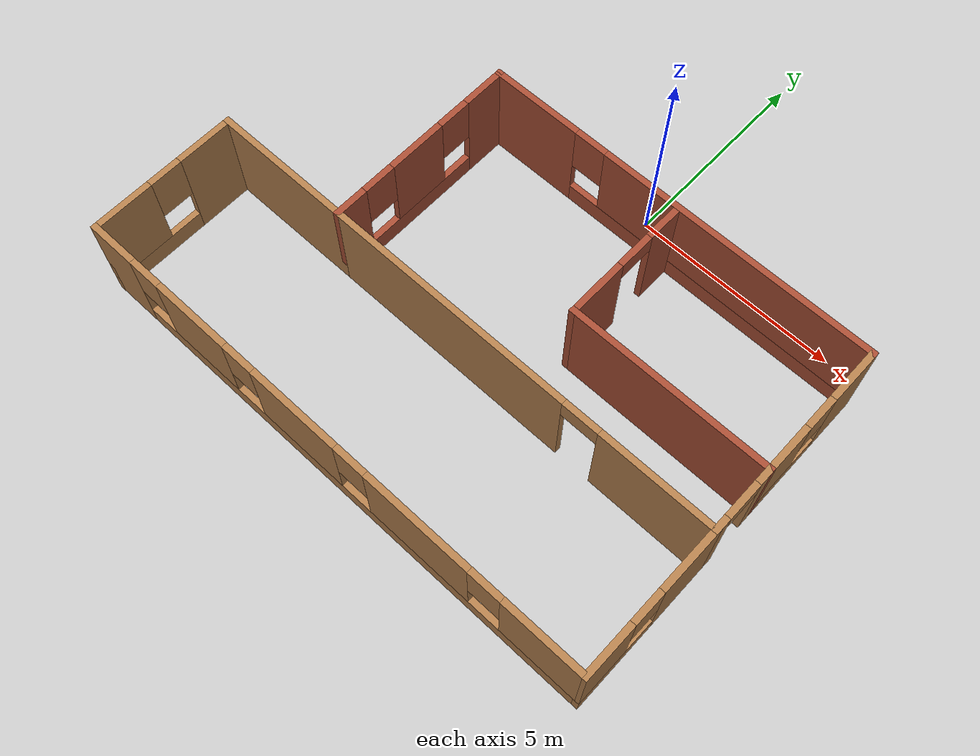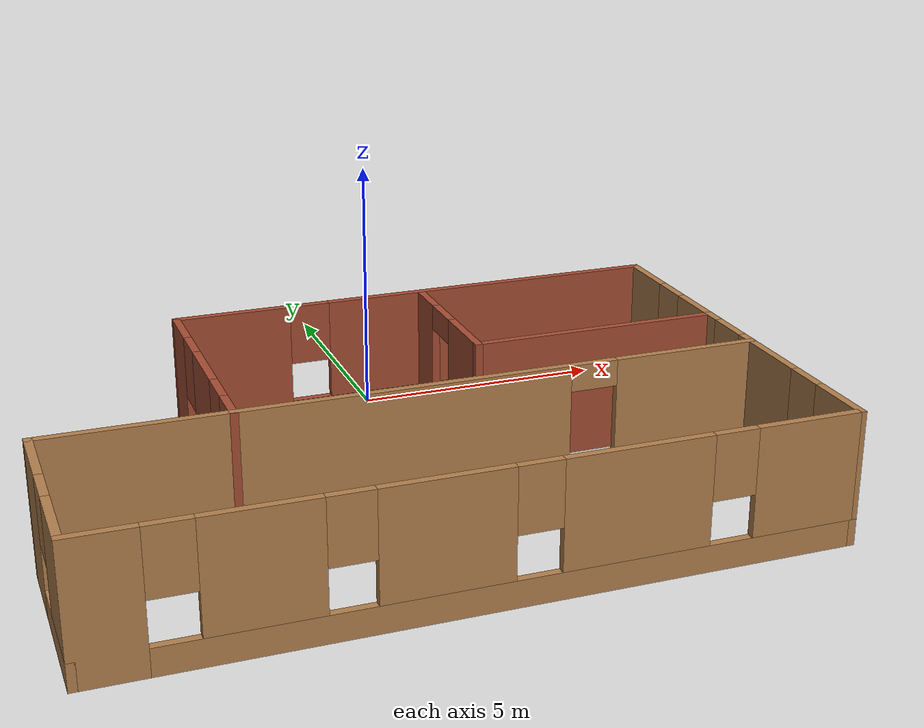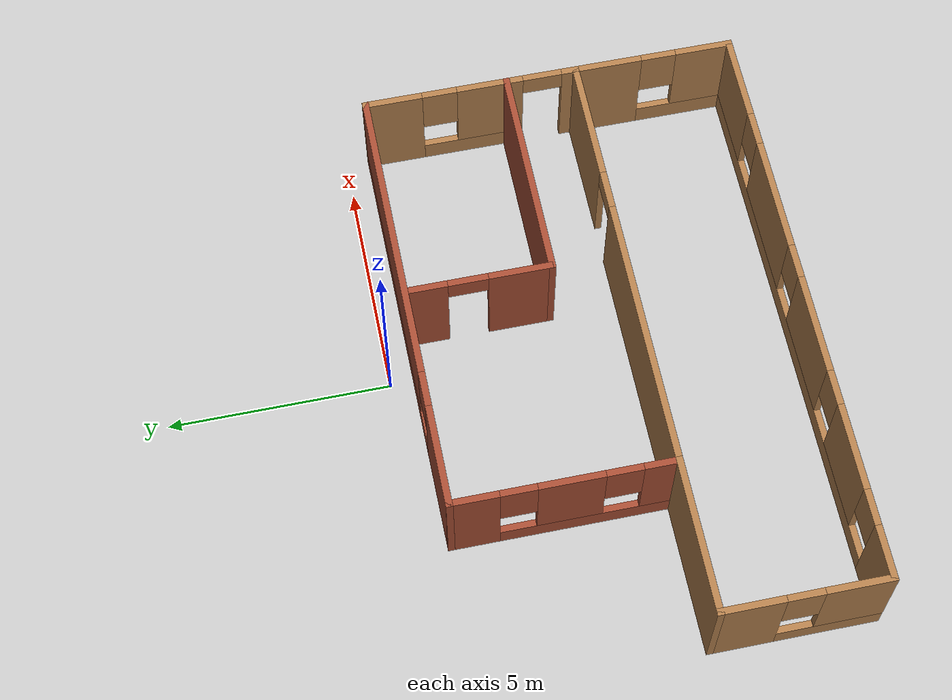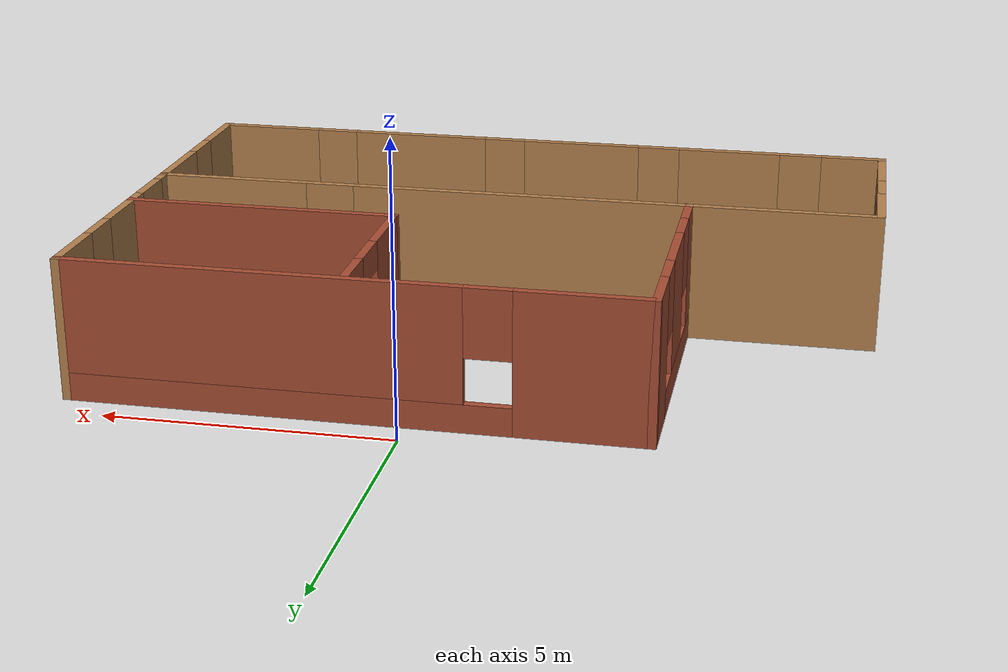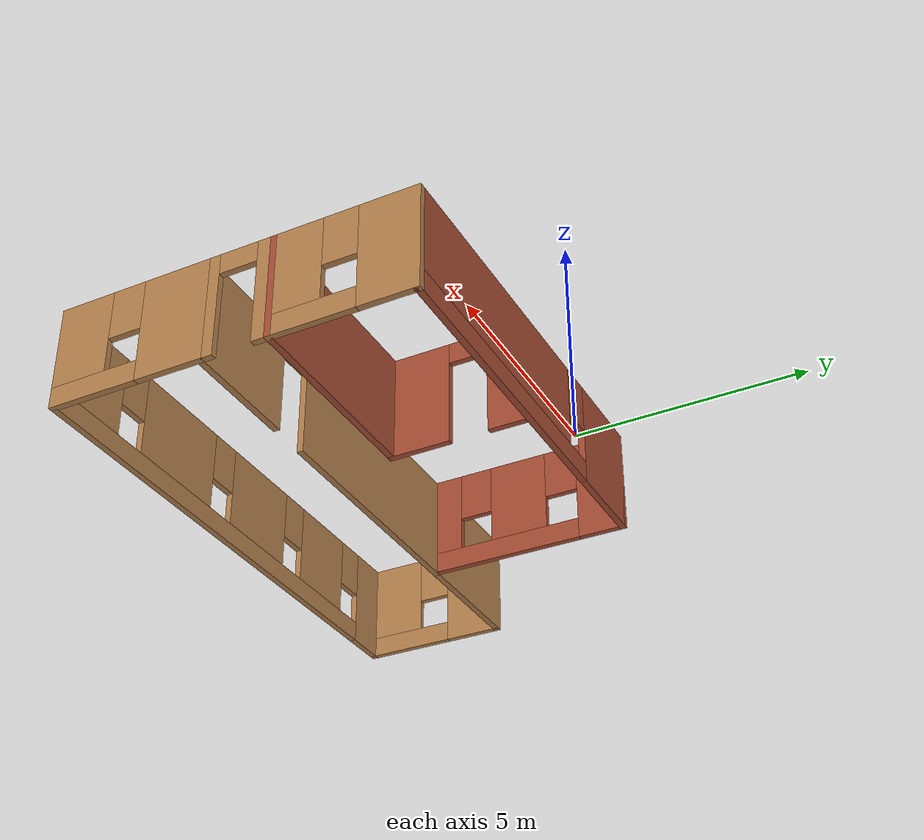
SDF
<?xml version='1.0'?>
<sdf version='1.7'>
  <model name='myworld2.world'>
    <pose>-0.764515 -4.55169 0 0 -0 0</pose>
    <link name='Wall_1'>
      <pose>-3.25 1.54831 0 0 -0 -1.5708</pose>
      <visual name='Wall_1_Visual_0'>
        <pose>-1.93275 0 1.25 0 -0 0</pose>
        <geometry>
          <box>
            <size>1.1345 0.15 2.5</size>
          </box>
        </geometry>
        <material>
          <script>
            <uri>file://media/materials/scripts/gazebo.material</uri>
            <name>Gazebo/Bricks</name>
          </script>
          <ambient>1 1 1 1</ambient>
        </material>
        <meta>
          <layer>0</layer>
        </meta>
      </visual>
      <collision name='Wall_1_Collision_0'>
        <geometry>
          <box>
            <size>1.1345 0.15 2.5</size>
          </box>
        </geometry>
        <pose>-1.93275 0 1.25 0 -0 0</pose>
      </collision>
      <visual name='Wall_1_Visual_1'>
        <pose>0.567248 0 0.25 0 -0 0</pose>
        <geometry>
          <box>
            <size>3.8655 0.15 0.5</size>
          </box>
        </geometry>
        <material>
          <script>
            <uri>file://media/materials/scripts/gazebo.material</uri>
            <name>Gazebo/Bricks</name>
          </script>
          <ambient>1 1 1 1</ambient>
        </material>
        <meta>
          <layer>0</layer>
        </meta>
      </visual>
      <collision name='Wall_1_Collision_1'>
        <geometry>
          <box>
            <size>3.8655 0.15 0.5</size>
          </box>
        </geometry>
        <pose>0.567248 0 0.25 0 -0 0</pose>
      </collision>
      <visual name='Wall_1_Visual_2'>
        <pose>0.154213 0 1.5 0 -0 0</pose>
        <geometry>
          <box>
            <size>1.43943 0.15 2</size>
          </box>
        </geometry>
        <material>
          <script>
            <uri>file://media/materials/scripts/gazebo.material</uri>
            <name>Gazebo/Bricks</name>
          </script>
          <ambient>1 1 1 1</ambient>
        </material>
        <meta>
          <layer>0</layer>
        </meta>
      </visual>
      <collision name='Wall_1_Collision_2'>
        <geometry>
          <box>
            <size>1.43943 0.15 2</size>
          </box>
        </geometry>
        <pose>0.154213 0 1.5 0 -0 0</pose>
      </collision>
      <visual name='Wall_1_Visual_3'>
        <pose>2.08697 0 1.5 0 -0 0</pose>
        <geometry>
          <box>
            <size>0.82607 0.15 2</size>
          </box>
        </geometry>
        <material>
          <script>
            <uri>file://media/materials/scripts/gazebo.material</uri>
            <name>Gazebo/Bricks</name>
          </script>
          <ambient>1 1 1 1</ambient>
        </material>
        <meta>
          <layer>0</layer>
        </meta>
      </visual>
      <collision name='Wall_1_Collision_3'>
        <geometry>
          <box>
            <size>0.82607 0.15 2</size>
          </box>
        </geometry>
        <pose>2.08697 0 1.5 0 -0 0</pose>
      </collision>
      <visual name='Wall_1_Visual_4'>
        <pose>-0.965503 0 1.9 0 -0 0</pose>
        <geometry>
          <box>
            <size>0.8 0.15 1.2</size>
          </box>
        </geometry>
        <material>
          <script>
            <uri>file://media/materials/scripts/gazebo.material</uri>
            <name>Gazebo/Bricks</name>
          </script>
          <ambient>1 1 1 1</ambient>
        </material>
        <meta>
          <layer>0</layer>
        </meta>
      </visual>
      <collision name='Wall_1_Collision_4'>
        <geometry>
          <box>
            <size>0.8 0.15 1.2</size>
          </box>
        </geometry>
        <pose>-0.965503 0 1.9 0 -0 0</pose>
      </collision>
      <visual name='Wall_1_Visual_5'>
        <pose>1.27393 0 1.9 0 -0 0</pose>
        <geometry>
          <box>
            <size>0.8 0.15 1.2</size>
          </box>
        </geometry>
        <material>
          <script>
            <uri>file://media/materials/scripts/gazebo.material</uri>
            <name>Gazebo/Bricks</name>
          </script>
          <ambient>1 1 1 1</ambient>
        </material>
        <meta>
          <layer>0</layer>
        </meta>
      </visual>
      <collision name='Wall_1_Collision_5'>
        <geometry>
          <box>
            <size>0.8 0.15 1.2</size>
          </box>
        </geometry>
        <pose>1.27393 0 1.9 0 -0 0</pose>
      </collision>
    </link>
    <link name='Wall_11'>
      <collision name='Wall_11_Collision'>
        <geometry>
          <box>
            <size>3.5 0.15 2.5</size>
          </box>
        </geometry>
        <pose>0 0 1.25 0 -0 0</pose>
      </collision>
      <visual name='Wall_11_Visual'>
        <pose>0 0 1.25 0 -0 0</pose>
        <geometry>
          <box>
            <size>3.5 0.15 2.5</size>
          </box>
        </geometry>
        <material>
          <script>
            <uri>file://media/materials/scripts/gazebo.material</uri>
            <name>Gazebo/Wood</name>
          </script>
          <ambient>1 1 1 1</ambient>
        </material>
        <meta>
          <layer>0</layer>
        </meta>
      </visual>
      <pose>-4.925 -0.876687 0 0 -0 3.14159</pose>
    </link>
    <link name='Wall_12'>
      <pose>-6.6 -2.67669 0 0 -0 -1.5708</pose>
      <visual name='Wall_12_Visual_0'>
        <pose>-1.14947 0 1.25 0 -0 0</pose>
        <geometry>
          <box>
            <size>1.45106 0.15 2.5</size>
          </box>
        </geometry>
        <material>
          <script>
            <uri>file://media/materials/scripts/gazebo.material</uri>
            <name>Gazebo/Wood</name>
          </script>
          <ambient>1 1 1 1</ambient>
        </material>
        <meta>
          <layer>0</layer>
        </meta>
      </visual>
      <collision name='Wall_12_Collision_0'>
        <geometry>
          <box>
            <size>1.45106 0.15 2.5</size>
          </box>
        </geometry>
        <pose>-1.14947 0 1.25 0 -0 0</pose>
      </collision>
      <visual name='Wall_12_Visual_1'>
        <pose>0.725532 0 0.25 0 -0 0</pose>
        <geometry>
          <box>
            <size>2.29894 0.15 0.5</size>
          </box>
        </geometry>
        <material>
          <script>
            <uri>file://media/materials/scripts/gazebo.material</uri>
            <name>Gazebo/Wood</name>
          </script>
          <ambient>1 1 1 1</ambient>
        </material>
        <meta>
          <layer>0</layer>
        </meta>
      </visual>
      <collision name='Wall_12_Collision_1'>
        <geometry>
          <box>
            <size>2.29894 0.15 0.5</size>
          </box>
        </geometry>
        <pose>0.725532 0 0.25 0 -0 0</pose>
      </collision>
      <visual name='Wall_12_Visual_2'>
        <pose>1.12553 0 1.5 0 -0 0</pose>
        <geometry>
          <box>
            <size>1.49894 0.15 2</size>
          </box>
        </geometry>
        <material>
          <script>
            <uri>file://media/materials/scripts/gazebo.material</uri>
            <name>Gazebo/Wood</name>
          </script>
          <ambient>1 1 1 1</ambient>
        </material>
        <meta>
          <layer>0</layer>
        </meta>
      </visual>
      <collision name='Wall_12_Collision_2'>
        <geometry>
          <box>
            <size>1.49894 0.15 2</size>
          </box>
        </geometry>
        <pose>1.12553 0 1.5 0 -0 0</pose>
      </collision>
      <visual name='Wall_12_Visual_3'>
        <pose>-0.023937 0 1.9 0 -0 0</pose>
        <geometry>
          <box>
            <size>0.8 0.15 1.2</size>
          </box>
        </geometry>
        <material>
          <script>
            <uri>file://media/materials/scripts/gazebo.material</uri>
            <name>Gazebo/Wood</name>
          </script>
          <ambient>1 1 1 1</ambient>
        </material>
        <meta>
          <layer>0</layer>
        </meta>
      </visual>
      <collision name='Wall_12_Collision_3'>
        <geometry>
          <box>
            <size>0.8 0.15 1.2</size>
          </box>
        </geometry>
        <pose>-0.023937 0 1.9 0 -0 0</pose>
      </collision>
    </link>
    <link name='Wall_13'>
      <pose>-0.05 -4.47669 0 0 -0 0</pose>
      <visual name='Wall_13_Visual_0'>
        <pose>-6.01275 0 1.25 0 -0 0</pose>
        <geometry>
          <box>
            <size>1.2245 0.15 2.5</size>
          </box>
        </geometry>
        <material>
          <script>
            <uri>file://media/materials/scripts/gazebo.material</uri>
            <name>Gazebo/Wood</name>
          </script>
          <ambient>1 1 1 1</ambient>
        </material>
        <meta>
          <layer>0</layer>
        </meta>
      </visual>
      <collision name='Wall_13_Collision_0'>
        <geometry>
          <box>
            <size>1.2245 0.15 2.5</size>
          </box>
        </geometry>
        <pose>-6.01275 0 1.25 0 -0 0</pose>
      </collision>
      <visual name='Wall_13_Visual_1'>
        <pose>0.612248 0 0.25 0 -0 0</pose>
        <geometry>
          <box>
            <size>12.0255 0.15 0.5</size>
          </box>
        </geometry>
        <material>
          <script>
            <uri>file://media/materials/scripts/gazebo.material</uri>
            <name>Gazebo/Wood</name>
          </script>
          <ambient>1 1 1 1</ambient>
        </material>
        <meta>
          <layer>0</layer>
        </meta>
      </visual>
      <collision name='Wall_13_Collision_1'>
        <geometry>
          <box>
            <size>12.0255 0.15 0.5</size>
          </box>
        </geometry>
        <pose>0.612248 0 0.25 0 -0 0</pose>
      </collision>
      <visual name='Wall_13_Visual_2'>
        <pose>-3.6251 0 1.5 0 -0 0</pose>
        <geometry>
          <box>
            <size>1.9508 0.15 2</size>
          </box>
        </geometry>
        <material>
          <script>
            <uri>file://media/materials/scripts/gazebo.material</uri>
            <name>Gazebo/Wood</name>
          </script>
          <ambient>1 1 1 1</ambient>
        </material>
        <meta>
          <layer>0</layer>
        </meta>
      </visual>
      <collision name='Wall_13_Collision_2'>
        <geometry>
          <box>
            <size>1.9508 0.15 2</size>
          </box>
        </geometry>
        <pose>-3.6251 0 1.5 0 -0 0</pose>
      </collision>
      <visual name='Wall_13_Visual_3'>
        <pose>-0.706788 0 1.5 0 -0 0</pose>
        <geometry>
          <box>
            <size>2.28583 0.15 2</size>
          </box>
        </geometry>
        <material>
          <script>
            <uri>file://media/materials/scripts/gazebo.material</uri>
            <name>Gazebo/Wood</name>
          </script>
          <ambient>1 1 1 1</ambient>
        </material>
        <meta>
          <layer>0</layer>
        </meta>
      </visual>
      <collision name='Wall_13_Collision_3'>
        <geometry>
          <box>
            <size>2.28583 0.15 2</size>
          </box>
        </geometry>
        <pose>-0.706788 0 1.5 0 -0 0</pose>
      </collision>
      <visual name='Wall_13_Visual_4'>
        <pose>2.5642 0 1.5 0 -0 0</pose>
        <geometry>
          <box>
            <size>2.65613 0.15 2</size>
          </box>
        </geometry>
        <material>
          <script>
            <uri>file://media/materials/scripts/gazebo.material</uri>
            <name>Gazebo/Wood</name>
          </script>
          <ambient>1 1 1 1</ambient>
        </material>
        <meta>
          <layer>0</layer>
        </meta>
      </visual>
      <collision name='Wall_13_Collision_4'>
        <geometry>
          <box>
            <size>2.65613 0.15 2</size>
          </box>
        </geometry>
        <pose>2.5642 0 1.5 0 -0 0</pose>
      </collision>
      <visual name='Wall_13_Visual_5'>
        <pose>5.65863 0 1.5 0 -0 0</pose>
        <geometry>
          <box>
            <size>1.93274 0.15 2</size>
          </box>
        </geometry>
        <material>
          <script>
            <uri>file://media/materials/scripts/gazebo.material</uri>
            <name>Gazebo/Wood</name>
          </script>
          <ambient>1 1 1 1</ambient>
        </material>
        <meta>
          <layer>0</layer>
        </meta>
      </visual>
      <collision name='Wall_13_Collision_5'>
        <geometry>
          <box>
            <size>1.93274 0.15 2</size>
          </box>
        </geometry>
        <pose>5.65863 0 1.5 0 -0 0</pose>
      </collision>
      <visual name='Wall_13_Visual_6'>
        <pose>-5.0005 0 1.9 0 -0 0</pose>
        <geometry>
          <box>
            <size>0.8 0.15 1.2</size>
          </box>
        </geometry>
        <material>
          <script>
            <uri>file://media/materials/scripts/gazebo.material</uri>
            <name>Gazebo/Wood</name>
          </script>
          <ambient>1 1 1 1</ambient>
        </material>
        <meta>
          <layer>0</layer>
        </meta>
      </visual>
      <collision name='Wall_13_Collision_6'>
        <geometry>
          <box>
            <size>0.8 0.15 1.2</size>
          </box>
        </geometry>
        <pose>-5.0005 0 1.9 0 -0 0</pose>
      </collision>
      <visual name='Wall_13_Visual_7'>
        <pose>-2.2497 0 1.9 0 -0 0</pose>
        <geometry>
          <box>
            <size>0.8 0.15 1.2</size>
          </box>
        </geometry>
        <material>
          <script>
            <uri>file://media/materials/scripts/gazebo.material</uri>
            <name>Gazebo/Wood</name>
          </script>
          <ambient>1 1 1 1</ambient>
        </material>
        <meta>
          <layer>0</layer>
        </meta>
      </visual>
      <collision name='Wall_13_Collision_7'>
        <geometry>
          <box>
            <size>0.8 0.15 1.2</size>
          </box>
        </geometry>
        <pose>-2.2497 0 1.9 0 -0 0</pose>
      </collision>
      <visual name='Wall_13_Visual_8'>
        <pose>0.836129 0 1.9 0 -0 0</pose>
        <geometry>
          <box>
            <size>0.8 0.15 1.2</size>
          </box>
        </geometry>
        <material>
          <script>
            <uri>file://media/materials/scripts/gazebo.material</uri>
            <name>Gazebo/Wood</name>
          </script>
          <ambient>1 1 1 1</ambient>
        </material>
        <meta>
          <layer>0</layer>
        </meta>
      </visual>
      <collision name='Wall_13_Collision_8'>
        <geometry>
          <box>
            <size>0.8 0.15 1.2</size>
          </box>
        </geometry>
        <pose>0.836129 0 1.9 0 -0 0</pose>
      </collision>
      <visual name='Wall_13_Visual_9'>
        <pose>4.29226 0 1.9 0 -0 0</pose>
        <geometry>
          <box>
            <size>0.8 0.15 1.2</size>
          </box>
        </geometry>
        <material>
          <script>
            <uri>file://media/materials/scripts/gazebo.material</uri>
            <name>Gazebo/Wood</name>
          </script>
          <ambient>1 1 1 1</ambient>
        </material>
        <meta>
          <layer>0</layer>
        </meta>
      </visual>
      <collision name='Wall_13_Collision_9'>
        <geometry>
          <box>
            <size>0.8 0.15 1.2</size>
          </box>
        </geometry>
        <pose>4.29226 0 1.9 0 -0 0</pose>
      </collision>
    </link>
    <link name='Wall_15'>
      <pose>6.6 -2.67669 0 0 -0 -1.5708</pose>
      <visual name='Wall_15_Visual_0'>
        <pose>-1.07012 0 1.25 0 -0 0</pose>
        <geometry>
          <box>
            <size>1.60976 0.15 2.5</size>
          </box>
        </geometry>
        <material>
          <script>
            <uri>file://media/materials/scripts/gazebo.material</uri>
            <name>Gazebo/Wood</name>
          </script>
          <ambient>1 1 1 1</ambient>
        </material>
        <meta>
          <layer>0</layer>
        </meta>
      </visual>
      <collision name='Wall_15_Collision_0'>
        <geometry>
          <box>
            <size>1.60976 0.15 2.5</size>
          </box>
        </geometry>
        <pose>-1.07012 0 1.25 0 -0 0</pose>
      </collision>
      <visual name='Wall_15_Visual_1'>
        <pose>0.804882 0 0.25 0 -0 0</pose>
        <geometry>
          <box>
            <size>2.14024 0.15 0.5</size>
          </box>
        </geometry>
        <material>
          <script>
            <uri>file://media/materials/scripts/gazebo.material</uri>
            <name>Gazebo/Wood</name>
          </script>
          <ambient>1 1 1 1</ambient>
        </material>
        <meta>
          <layer>0</layer>
        </meta>
      </visual>
      <collision name='Wall_15_Collision_1'>
        <geometry>
          <box>
            <size>2.14024 0.15 0.5</size>
          </box>
        </geometry>
        <pose>0.804882 0 0.25 0 -0 0</pose>
      </collision>
      <visual name='Wall_15_Visual_2'>
        <pose>1.20488 0 1.5 0 -0 0</pose>
        <geometry>
          <box>
            <size>1.34024 0.15 2</size>
          </box>
        </geometry>
        <material>
          <script>
            <uri>file://media/materials/scripts/gazebo.material</uri>
            <name>Gazebo/Wood</name>
          </script>
          <ambient>1 1 1 1</ambient>
        </material>
        <meta>
          <layer>0</layer>
        </meta>
      </visual>
      <collision name='Wall_15_Collision_2'>
        <geometry>
          <box>
            <size>1.34024 0.15 2</size>
          </box>
        </geometry>
        <pose>1.20488 0 1.5 0 -0 0</pose>
      </collision>
      <visual name='Wall_15_Visual_3'>
        <pose>0.134763 0 1.9 0 -0 0</pose>
        <geometry>
          <box>
            <size>0.8 0.15 1.2</size>
          </box>
        </geometry>
        <material>
          <script>
            <uri>file://media/materials/scripts/gazebo.material</uri>
            <name>Gazebo/Wood</name>
          </script>
          <ambient>1 1 1 1</ambient>
        </material>
        <meta>
          <layer>0</layer>
        </meta>
      </visual>
      <collision name='Wall_15_Collision_3'>
        <geometry>
          <box>
            <size>0.8 0.15 1.2</size>
          </box>
        </geometry>
        <pose>0.134763 0 1.9 0 -0 0</pose>
      </collision>
    </link>
    <link name='Wall_2'>
      <pose>1.675 -0.876687 0 0 -0 0</pose>
      <visual name='Wall_2_Visual_0'>
        <pose>-1.8822 0 1.25 0 -0 0</pose>
        <geometry>
          <box>
            <size>6.2356 0.15 2.5</size>
          </box>
        </geometry>
        <material>
          <script>
            <uri>file://media/materials/scripts/gazebo.material</uri>
            <name>Gazebo/Wood</name>
          </script>
          <ambient>1 1 1 1</ambient>
        </material>
        <meta>
          <layer>0</layer>
        </meta>
      </visual>
      <collision name='Wall_2_Collision_0'>
        <geometry>
          <box>
            <size>6.2356 0.15 2.5</size>
          </box>
        </geometry>
        <pose>-1.8822 0 1.25 0 -0 0</pose>
      </collision>
      <visual name='Wall_2_Visual_1'>
        <pose>3.5678 0 1.25 0 -0 0</pose>
        <geometry>
          <box>
            <size>2.8644 0.15 2.5</size>
          </box>
        </geometry>
        <material>
          <script>
            <uri>file://media/materials/scripts/gazebo.material</uri>
            <name>Gazebo/Wood</name>
          </script>
          <ambient>1 1 1 1</ambient>
        </material>
        <meta>
          <layer>0</layer>
        </meta>
      </visual>
      <collision name='Wall_2_Collision_1'>
        <geometry>
          <box>
            <size>2.8644 0.15 2.5</size>
          </box>
        </geometry>
        <pose>3.5678 0 1.25 0 -0 0</pose>
      </collision>
      <visual name='Wall_2_Visual_2'>
        <pose>1.6856 0 2.25 0 -0 0</pose>
        <geometry>
          <box>
            <size>0.9 0.15 0.5</size>
          </box>
        </geometry>
        <material>
          <script>
            <uri>file://media/materials/scripts/gazebo.material</uri>
            <name>Gazebo/Wood</name>
          </script>
          <ambient>1 1 1 1</ambient>
        </material>
        <meta>
          <layer>0</layer>
        </meta>
      </visual>
      <collision name='Wall_2_Collision_2'>
        <geometry>
          <box>
            <size>0.9 0.15 0.5</size>
          </box>
        </geometry>
        <pose>1.6856 0 2.25 0 -0 0</pose>
      </collision>
    </link>
    <link name='Wall_3'>
      <pose>6.6 -0.076687 0 0 -0 1.5708</pose>
      <visual name='Wall_3_Visual_0'>
        <pose>-0.672115 0 1.25 0 -0 0</pose>
        <geometry>
          <box>
            <size>0.40577 0.15 2.5</size>
          </box>
        </geometry>
        <material>
          <script>
            <uri>file://media/materials/scripts/gazebo.material</uri>
            <name>Gazebo/Wood</name>
          </script>
          <ambient>1 1 1 1</ambient>
        </material>
        <meta>
          <layer>0</layer>
        </meta>
      </visual>
      <collision name='Wall_3_Collision_0'>
        <geometry>
          <box>
            <size>0.40577 0.15 2.5</size>
          </box>
        </geometry>
        <pose>-0.672115 0 1.25 0 -0 0</pose>
      </collision>
      <visual name='Wall_3_Visual_1'>
        <pose>0.652885 0 1.25 0 -0 0</pose>
        <geometry>
          <box>
            <size>0.44423 0.15 2.5</size>
          </box>
        </geometry>
        <material>
          <script>
            <uri>file://media/materials/scripts/gazebo.material</uri>
            <name>Gazebo/Wood</name>
          </script>
          <ambient>1 1 1 1</ambient>
        </material>
        <meta>
          <layer>0</layer>
        </meta>
      </visual>
      <collision name='Wall_3_Collision_1'>
        <geometry>
          <box>
            <size>0.44423 0.15 2.5</size>
          </box>
        </geometry>
        <pose>0.652885 0 1.25 0 -0 0</pose>
      </collision>
      <visual name='Wall_3_Visual_2'>
        <pose>-0.01923 0 2.25 0 -0 0</pose>
        <geometry>
          <box>
            <size>0.9 0.15 0.5</size>
          </box>
        </geometry>
        <material>
          <script>
            <uri>file://media/materials/scripts/gazebo.material</uri>
            <name>Gazebo/Wood</name>
          </script>
          <ambient>1 1 1 1</ambient>
        </material>
        <meta>
          <layer>0</layer>
        </meta>
      </visual>
      <collision name='Wall_3_Collision_2'>
        <geometry>
          <box>
            <size>0.9 0.15 0.5</size>
          </box>
        </geometry>
        <pose>-0.01923 0 2.25 0 -0 0</pose>
      </collision>
    </link>
    <link name='Wall_4'>
      <collision name='Wall_4_Collision'>
        <geometry>
          <box>
            <size>5 0.15 2.5</size>
          </box>
        </geometry>
        <pose>0 0 1.25 0 -0 0</pose>
      </collision>
      <visual name='Wall_4_Visual'>
        <pose>0 0 1.25 0 -0 0</pose>
        <geometry>
          <box>
            <size>5 0.15 2.5</size>
          </box>
        </geometry>
        <material>
          <script>
            <uri>file://media/materials/scripts/gazebo.material</uri>
            <name>Gazebo/Bricks</name>
          </script>
          <ambient>1 1 1 1</ambient>
        </material>
        <meta>
          <layer>0</layer>
        </meta>
      </visual>
      <pose>4.175 0.723313 0 0 -0 3.14159</pose>
    </link>
    <link name='Wall_6'>
      <pose>1.675 3.97331 0 0 -0 0</pose>
      <visual name='Wall_6_Visual_0'>
        <pose>-3.84008 0 1.25 0 -0 0</pose>
        <geometry>
          <box>
            <size>2.31985 0.15 2.5</size>
          </box>
        </geometry>
        <material>
          <script>
            <uri>file://media/materials/scripts/gazebo.material</uri>
            <name>Gazebo/Bricks</name>
          </script>
          <ambient>1 1 1 1</ambient>
        </material>
        <meta>
          <layer>0</layer>
        </meta>
      </visual>
      <collision name='Wall_6_Collision_0'>
        <geometry>
          <box>
            <size>2.31985 0.15 2.5</size>
          </box>
        </geometry>
        <pose>-3.84008 0 1.25 0 -0 0</pose>
      </collision>
      <visual name='Wall_6_Visual_1'>
        <pose>1.15992 0 0.25 0 -0 0</pose>
        <geometry>
          <box>
            <size>7.68015 0.15 0.5</size>
          </box>
        </geometry>
        <material>
          <script>
            <uri>file://media/materials/scripts/gazebo.material</uri>
            <name>Gazebo/Bricks</name>
          </script>
          <ambient>1 1 1 1</ambient>
        </material>
        <meta>
          <layer>0</layer>
        </meta>
      </visual>
      <collision name='Wall_6_Collision_1'>
        <geometry>
          <box>
            <size>7.68015 0.15 0.5</size>
          </box>
        </geometry>
        <pose>1.15992 0 0.25 0 -0 0</pose>
      </collision>
      <visual name='Wall_6_Visual_2'>
        <pose>1.55992 0 1.5 0 -0 0</pose>
        <geometry>
          <box>
            <size>6.88015 0.15 2</size>
          </box>
        </geometry>
        <material>
          <script>
            <uri>file://media/materials/scripts/gazebo.material</uri>
            <name>Gazebo/Bricks</name>
          </script>
          <ambient>1 1 1 1</ambient>
        </material>
        <meta>
          <layer>0</layer>
        </meta>
      </visual>
      <collision name='Wall_6_Collision_2'>
        <geometry>
          <box>
            <size>6.88015 0.15 2</size>
          </box>
        </geometry>
        <pose>1.55992 0 1.5 0 -0 0</pose>
      </collision>
      <visual name='Wall_6_Visual_3'>
        <pose>-2.28015 0 1.9 0 -0 0</pose>
        <geometry>
          <box>
            <size>0.8 0.15 1.2</size>
          </box>
        </geometry>
        <material>
          <script>
            <uri>file://media/materials/scripts/gazebo.material</uri>
            <name>Gazebo/Bricks</name>
          </script>
          <ambient>1 1 1 1</ambient>
        </material>
        <meta>
          <layer>0</layer>
        </meta>
      </visual>
      <collision name='Wall_6_Collision_3'>
        <geometry>
          <box>
            <size>0.8 0.15 1.2</size>
          </box>
        </geometry>
        <pose>-2.28015 0 1.9 0 -0 0</pose>
      </collision>
    </link>
    <link name='Wall_7'>
      <pose>6.6 2.34831 0 0 -0 -1.5708</pose>
      <visual name='Wall_7_Visual_0'>
        <pose>-1.01814 0 1.25 0 -0 0</pose>
        <geometry>
          <box>
            <size>1.36373 0.15 2.5</size>
          </box>
        </geometry>
        <material>
          <script>
            <uri>file://media/materials/scripts/gazebo.material</uri>
            <name>Gazebo/Wood</name>
          </script>
          <ambient>1 1 1 1</ambient>
        </material>
        <meta>
          <layer>0</layer>
        </meta>
      </visual>
      <collision name='Wall_7_Collision_0'>
        <geometry>
          <box>
            <size>1.36373 0.15 2.5</size>
          </box>
        </geometry>
        <pose>-1.01814 0 1.25 0 -0 0</pose>
      </collision>
      <visual name='Wall_7_Visual_1'>
        <pose>0.681865 0 0.25 0 -0 0</pose>
        <geometry>
          <box>
            <size>2.03627 0.15 0.5</size>
          </box>
        </geometry>
        <material>
          <script>
            <uri>file://media/materials/scripts/gazebo.material</uri>
            <name>Gazebo/Wood</name>
          </script>
          <ambient>1 1 1 1</ambient>
        </material>
        <meta>
          <layer>0</layer>
        </meta>
      </visual>
      <collision name='Wall_7_Collision_1'>
        <geometry>
          <box>
            <size>2.03627 0.15 0.5</size>
          </box>
        </geometry>
        <pose>0.681865 0 0.25 0 -0 0</pose>
      </collision>
      <visual name='Wall_7_Visual_2'>
        <pose>1.08187 0 1.5 0 -0 0</pose>
        <geometry>
          <box>
            <size>1.23627 0.15 2</size>
          </box>
        </geometry>
        <material>
          <script>
            <uri>file://media/materials/scripts/gazebo.material</uri>
            <name>Gazebo/Wood</name>
          </script>
          <ambient>1 1 1 1</ambient>
        </material>
        <meta>
          <layer>0</layer>
        </meta>
      </visual>
      <collision name='Wall_7_Collision_2'>
        <geometry>
          <box>
            <size>1.23627 0.15 2</size>
          </box>
        </geometry>
        <pose>1.08187 0 1.5 0 -0 0</pose>
      </collision>
      <visual name='Wall_7_Visual_3'>
        <pose>0.06373 0 1.9 0 -0 0</pose>
        <geometry>
          <box>
            <size>0.8 0.15 1.2</size>
          </box>
        </geometry>
        <material>
          <script>
            <uri>file://media/materials/scripts/gazebo.material</uri>
            <name>Gazebo/Wood</name>
          </script>
          <ambient>1 1 1 1</ambient>
        </material>
        <meta>
          <layer>0</layer>
        </meta>
      </visual>
      <collision name='Wall_7_Collision_3'>
        <geometry>
          <box>
            <size>0.8 0.15 1.2</size>
          </box>
        </geometry>
        <pose>0.06373 0 1.9 0 -0 0</pose>
      </collision>
    </link>
    <link name='Wall_9'>
      <pose>1.75 2.27331 0 0 -0 1.5708</pose>
      <visual name='Wall_9_Visual_0'>
        <pose>-0.881982 0 1.25 0 -0 0</pose>
        <geometry>
          <box>
            <size>1.48604 0.15 2.5</size>
          </box>
        </geometry>
        <material>
          <script>
            <uri>file://media/materials/scripts/gazebo.material</uri>
            <name>Gazebo/Bricks</name>
          </script>
          <ambient>1 1 1 1</ambient>
        </material>
        <meta>
          <layer>0</layer>
        </meta>
      </visual>
      <collision name='Wall_9_Collision_0'>
        <geometry>
          <box>
            <size>1.48604 0.15 2.5</size>
          </box>
        </geometry>
        <pose>-0.881982 0 1.25 0 -0 0</pose>
      </collision>
      <visual name='Wall_9_Visual_1'>
        <pose>1.19302 0 1.25 0 -0 0</pose>
        <geometry>
          <box>
            <size>0.863963 0.15 2.5</size>
          </box>
        </geometry>
        <material>
          <script>
            <uri>file://media/materials/scripts/gazebo.material</uri>
            <name>Gazebo/Bricks</name>
          </script>
          <ambient>1 1 1 1</ambient>
        </material>
        <meta>
          <layer>0</layer>
        </meta>
      </visual>
      <collision name='Wall_9_Collision_1'>
        <geometry>
          <box>
            <size>0.863963 0.15 2.5</size>
          </box>
        </geometry>
        <pose>1.19302 0 1.25 0 -0 0</pose>
      </collision>
      <visual name='Wall_9_Visual_2'>
        <pose>0.311037 0 2.25 0 -0 0</pose>
        <geometry>
          <box>
            <size>0.9 0.15 0.5</size>
          </box>
        </geometry>
        <material>
          <script>
            <uri>file://media/materials/scripts/gazebo.material</uri>
            <name>Gazebo/Bricks</name>
          </script>
          <ambient>1 1 1 1</ambient>
        </material>
        <meta>
          <layer>0</layer>
        </meta>
      </visual>
      <collision name='Wall_9_Collision_2'>
        <geometry>
          <box>
            <size>0.9 0.15 0.5</size>
          </box>
        </geometry>
        <pose>0.311037 0 2.25 0 -0 0</pose>
      </collision>
    </link>
    <static>1</static>
  </model>
</sdf>
